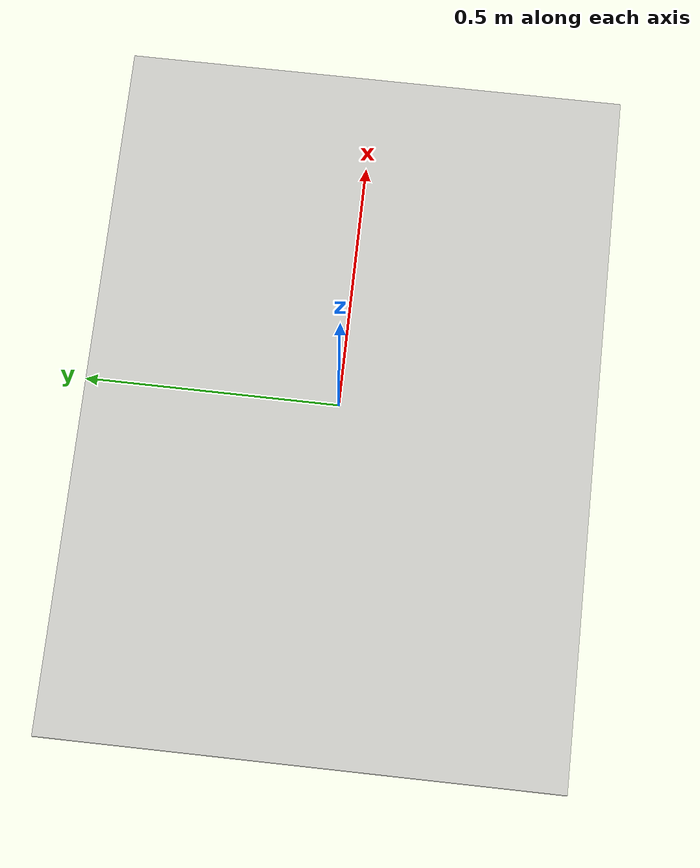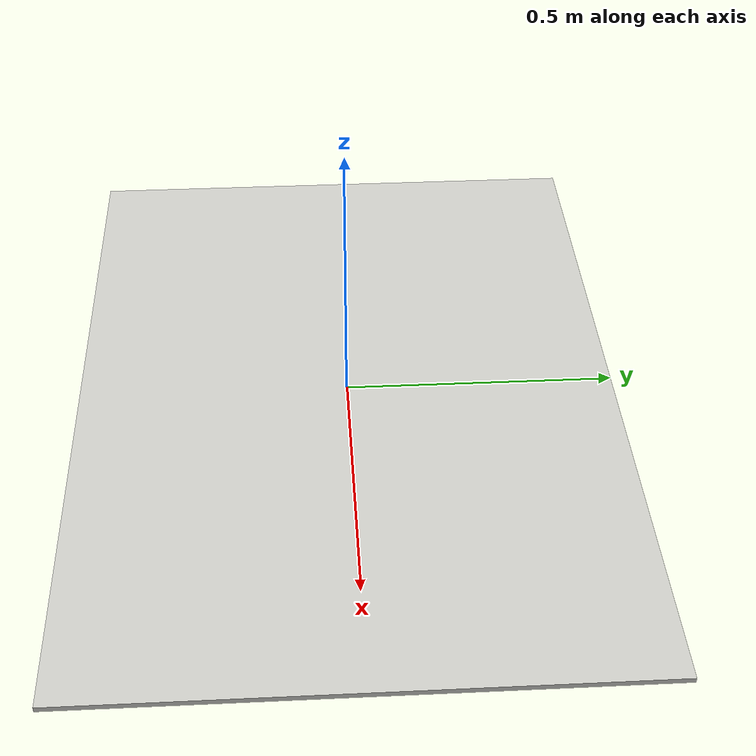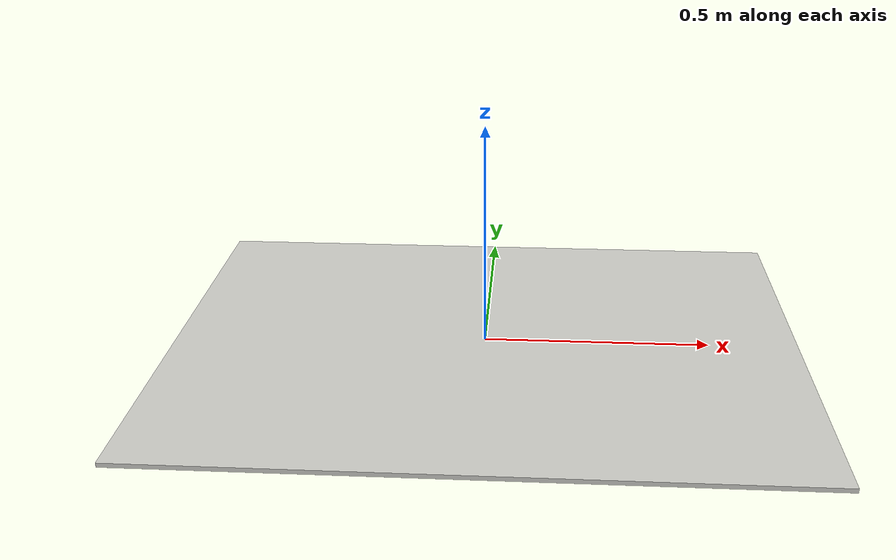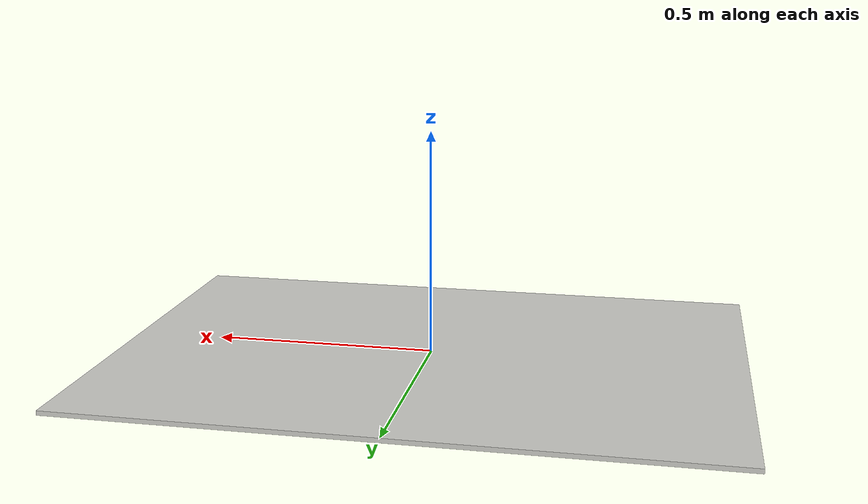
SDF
<?xml version="1.0"?>
<sdf version="1.6">
  <world name="bimanual_lab">
    <physics name="default_physics" type="ode">
      <max_step_size>0.001</max_step_size>
      <real_time_factor>1.0</real_time_factor>
      <real_time_update_rate>1000</real_time_update_rate>
      <ode>
        <solver>
          <type>quick</type>
          <iters>80</iters>
          <sor>1.0</sor>
        </solver>
      </ode>
    </physics>

    <scene>
      <ambient>0.55 0.55 0.55 1</ambient>
      <background>0.92 0.92 0.92 1</background>
    </scene>

    <light name="main_area_light" type="directional">
      <cast_shadows>true</cast_shadows>
      <pose>0 0 1.2 0 0 0</pose>
      <diffuse>0.85 0.85 0.80 1</diffuse>
      <specular>0.15 0.15 0.15 1</specular>
      <attenuation>
        <range>10</range>
        <constant>0.9</constant>
        <linear>0.01</linear>
        <quadratic>0.001</quadratic>
      </attenuation>
      <direction>-0.45 0.35 -0.82</direction>
    </light>

    <model name="table_surface">
      <static>true</static>
      <link name="table_surface_link">
        <collision name="collision">
          <geometry>
            <box>
              <size>1.4 1.0 0.01</size>
            </box>
          </geometry>
          <surface>
            <friction>
              <ode>
                <mu>1.2</mu>
                <mu2>1.2</mu2>
              </ode>
            </friction>
          </surface>
        </collision>
        <visual name="visual">
          <geometry>
            <box>
              <size>1.4 1.0 0.01</size>
            </box>
          </geometry>
          <material>
            <ambient>0.78 0.78 0.76 1</ambient>
            <diffuse>0.78 0.78 0.76 1</diffuse>
          </material>
        </visual>
      </link>
      <pose>0 0 -0.005 0 0 0</pose>
    </model>

    <gui fullscreen="0">
      <camera name="user_camera">
        <pose>0.72 -0.78 0.52 0 0.55 2.38</pose>
        <view_controller>orbit</view_controller>
      </camera>
    </gui>
  </world>
</sdf>
